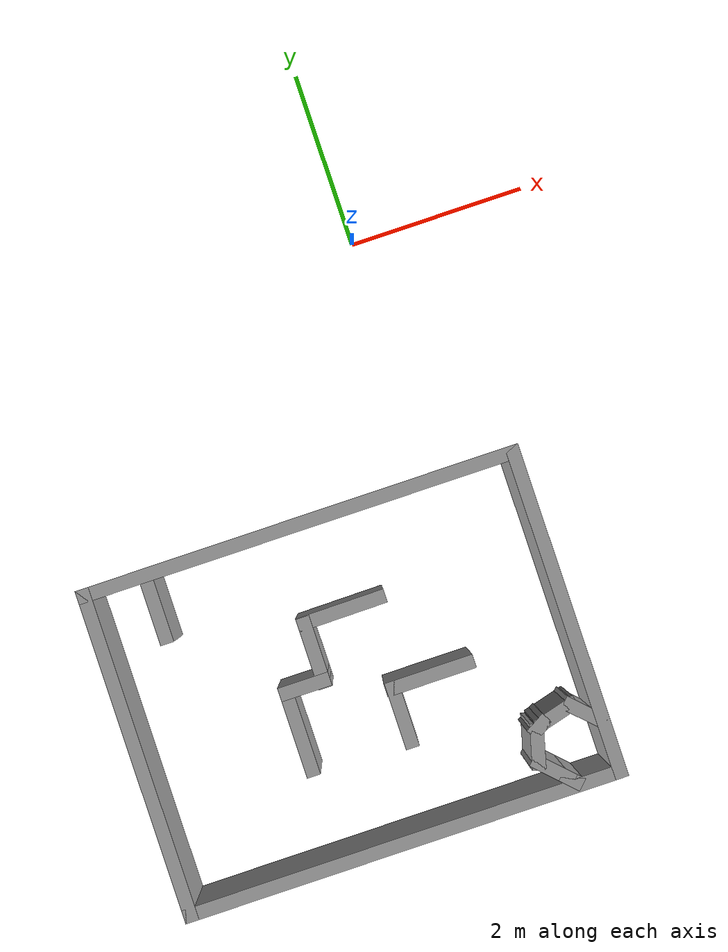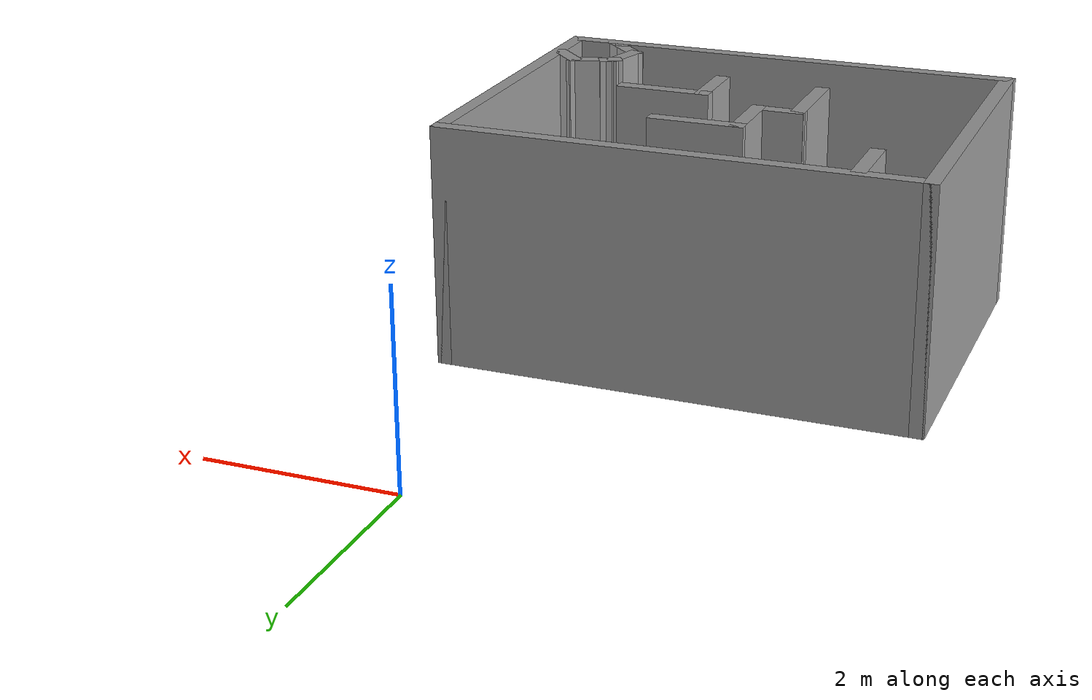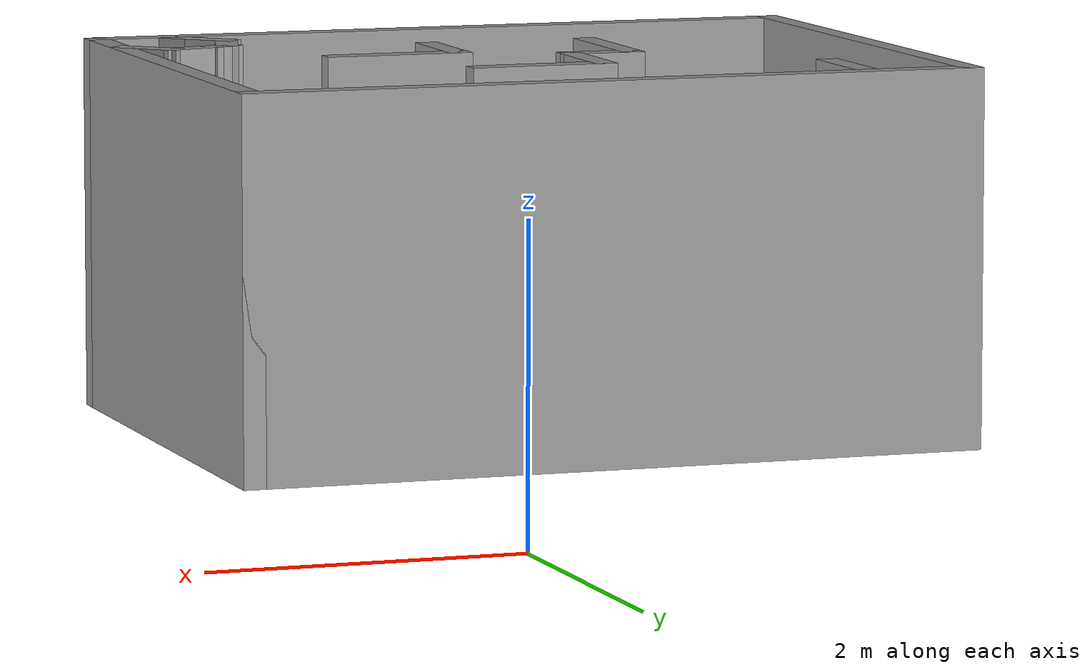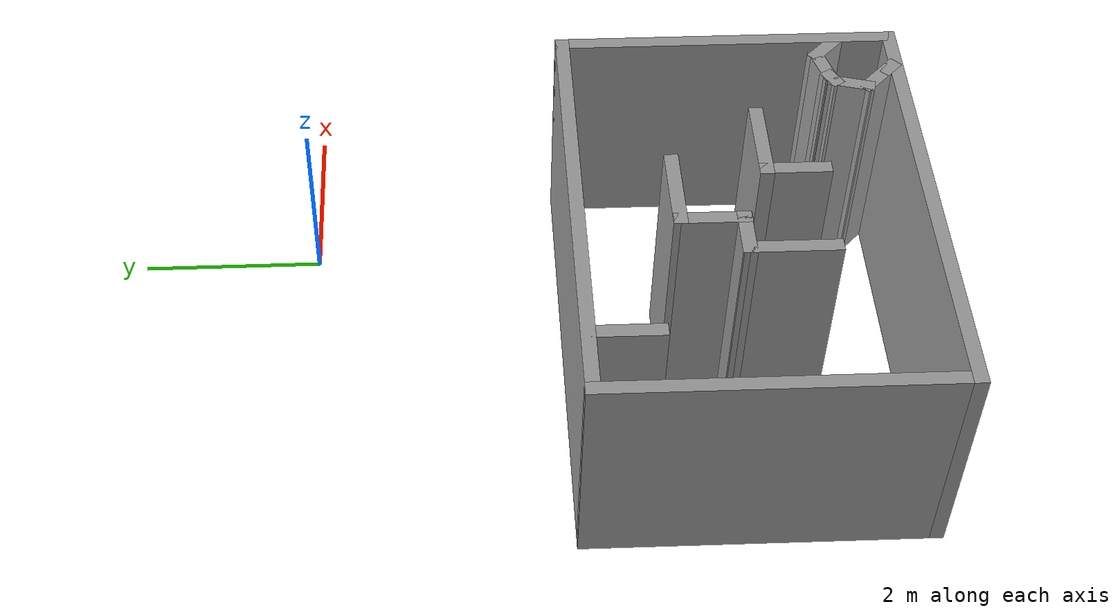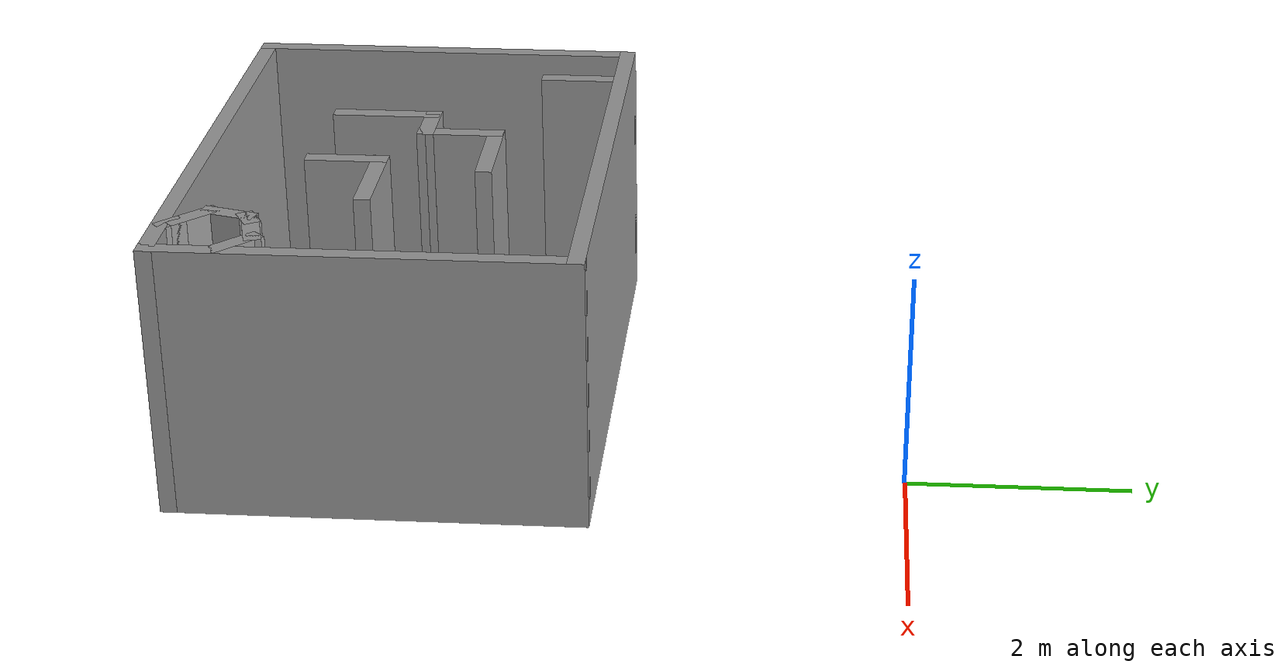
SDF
<?xml version='1.0'?>
<sdf version='1.6'>
  <model name='Contest1'>
    <pose frame=''>-1.545 -4.6 0 0 -0 0</pose>
    <link name='Wall_0'>
      <collision name='Wall_0_Collision'>
        <geometry>
          <box>
            <size>5 0.15 2.5</size>
          </box>
        </geometry>
        <pose frame=''>0 0 1.25 0 -0 0</pose>
      </collision>
      <visual name='Wall_0_Visual'>
        <pose frame=''>0 0 1.25 0 -0 0</pose>
        <geometry>
          <box>
            <size>5 0.15 2.5</size>
          </box>
        </geometry>
        <material>
          <script>
            <uri>file://media/materials/scripts/gazebo.material</uri>
            <name>Gazebo/Grey</name>
          </script>
          <ambient>1 1 1 1</ambient>
        </material>
      </visual>
      <pose frame=''>0 1.8 0 0 -0 0</pose>
    </link>
    <link name='Wall_1'>
      <collision name='Wall_1_Collision'>
        <geometry>
          <box>
            <size>3.75 0.15 2.5</size>
          </box>
        </geometry>
        <pose frame=''>0 0 1.25 0 -0 0</pose>
      </collision>
      <visual name='Wall_1_Visual'>
        <pose frame=''>0 0 1.25 0 -0 0</pose>
        <geometry>
          <box>
            <size>3.75 0.15 2.5</size>
          </box>
        </geometry>
        <material>
          <script>
            <uri>file://media/materials/scripts/gazebo.material</uri>
            <name>Gazebo/Grey</name>
          </script>
          <ambient>1 1 1 1</ambient>
        </material>
      </visual>
      <pose frame=''>2.425 0 0 0 0 -1.5708</pose>
    </link>
    <link name='Wall_10'>
      <collision name='Wall_10_Collision'>
        <geometry>
          <box>
            <size>0.25 0.15 2.5</size>
          </box>
        </geometry>
        <pose frame=''>0 0 1.25 0 -0 0</pose>
      </collision>
      <visual name='Wall_10_Visual'>
        <pose frame=''>0 0 1.25 0 -0 0</pose>
        <geometry>
          <box>
            <size>0.25 0.15 2.5</size>
          </box>
        </geometry>
        <material>
          <script>
            <uri>file://media/materials/scripts/gazebo.material</uri>
            <name>Gazebo/Grey</name>
          </script>
          <ambient>1 1 1 1</ambient>
        </material>
      </visual>
      <pose frame=''>1.76165 -1.07791 0 0 -0 0.523599</pose>
    </link>
    <link name='Wall_11'>
      <collision name='Wall_11_Collision'>
        <geometry>
          <box>
            <size>0.5 0.15 2.5</size>
          </box>
        </geometry>
        <pose frame=''>0 0 1.25 0 -0 0</pose>
      </collision>
      <visual name='Wall_11_Visual'>
        <pose frame=''>0 0 1.25 0 -0 0</pose>
        <geometry>
          <box>
            <size>0.5 0.15 2.5</size>
          </box>
        </geometry>
        <material>
          <script>
            <uri>file://media/materials/scripts/gazebo.material</uri>
            <name>Gazebo/Grey</name>
          </script>
          <ambient>1 1 1 1</ambient>
        </material>
      </visual>
      <pose frame=''>1.97398 -1.00761 0 0 -0 0.261799</pose>
    </link>
    <link name='Wall_12'>
      <collision name='Wall_12_Collision'>
        <geometry>
          <box>
            <size>0.5 0.15 2.5</size>
          </box>
        </geometry>
        <pose frame=''>0 0 1.25 0 -0 0</pose>
      </collision>
      <visual name='Wall_12_Visual'>
        <pose frame=''>0 0 1.25 0 -0 0</pose>
        <geometry>
          <box>
            <size>0.5 0.15 2.5</size>
          </box>
        </geometry>
        <material>
          <script>
            <uri>file://media/materials/scripts/gazebo.material</uri>
            <name>Gazebo/Grey</name>
          </script>
          <ambient>1 1 1 1</ambient>
        </material>
      </visual>
      <pose frame=''>2.26676 -1.08606 0 0 0 -0.785398</pose>
    </link>
    <link name='Wall_14'>
      <collision name='Wall_14_Collision'>
        <geometry>
          <box>
            <size>1 0.15 2.5</size>
          </box>
        </geometry>
        <pose frame=''>0 0 1.25 0 -0 0</pose>
      </collision>
      <visual name='Wall_14_Visual'>
        <pose frame=''>0 0 1.25 0 -0 0</pose>
        <geometry>
          <box>
            <size>1 0.15 2.5</size>
          </box>
        </geometry>
        <material>
          <script>
            <uri>file://media/materials/scripts/gazebo.material</uri>
            <name>Gazebo/Grey</name>
          </script>
          <ambient>1 1 1 1</ambient>
        </material>
      </visual>
      <pose frame=''>0.820031 -0.185404 0 0 -0 3.14159</pose>
    </link>
    <link name='Wall_15'>
      <collision name='Wall_15_Collision'>
        <geometry>
          <box>
            <size>0.75 0.15 2.5</size>
          </box>
        </geometry>
        <pose frame=''>0 0 1.25 0 -0 0</pose>
      </collision>
      <visual name='Wall_15_Visual'>
        <pose frame=''>0 0 1.25 0 -0 0</pose>
        <geometry>
          <box>
            <size>0.75 0.15 2.5</size>
          </box>
        </geometry>
        <material>
          <script>
            <uri>file://media/materials/scripts/gazebo.material</uri>
            <name>Gazebo/Grey</name>
          </script>
          <ambient>1 1 1 1</ambient>
        </material>
      </visual>
      <pose frame=''>0.401643 -0.485404 0 0 0 -1.5708</pose>
    </link>
    <link name='Wall_17'>
      <collision name='Wall_17_Collision'>
        <geometry>
          <box>
            <size>0.993413 0.15 2.5</size>
          </box>
        </geometry>
        <pose frame=''>0 0 1.25 0 -0 0</pose>
      </collision>
      <visual name='Wall_17_Visual'>
        <pose frame=''>0 0 1.25 0 -0 0</pose>
        <geometry>
          <box>
            <size>0.993413 0.15 2.5</size>
          </box>
        </geometry>
        <material>
          <script>
            <uri>file://media/materials/scripts/gazebo.material</uri>
            <name>Gazebo/Grey</name>
          </script>
          <ambient>1 1 1 1</ambient>
        </material>
      </visual>
      <pose frame=''>0.14225 0.776714 0 0 0 -3.13375</pose>
    </link>
    <link name='Wall_18'>
      <collision name='Wall_18_Collision'>
        <geometry>
          <box>
            <size>0.796287 0.15 2.5</size>
          </box>
        </geometry>
        <pose frame=''>0 0 1.25 0 -0 0</pose>
      </collision>
      <visual name='Wall_18_Visual'>
        <pose frame=''>0 0 1.25 0 -0 0</pose>
        <geometry>
          <box>
            <size>0.796287 0.15 2.5</size>
          </box>
        </geometry>
        <material>
          <script>
            <uri>file://media/materials/scripts/gazebo.material</uri>
            <name>Gazebo/Grey</name>
          </script>
          <ambient>1 1 1 1</ambient>
        </material>
      </visual>
      <pose frame=''>-0.279444 0.443652 0 0 0 -1.5708</pose>
    </link>
    <link name='Wall_19'>
      <collision name='Wall_19_Collision'>
        <geometry>
          <box>
            <size>0.569329 0.15 2.5</size>
          </box>
        </geometry>
        <pose frame=''>0 0 1.25 0 -0 0</pose>
      </collision>
      <visual name='Wall_19_Visual'>
        <pose frame=''>0 0 1.25 0 -0 0</pose>
        <geometry>
          <box>
            <size>0.569329 0.15 2.5</size>
          </box>
        </geometry>
        <material>
          <script>
            <uri>file://media/materials/scripts/gazebo.material</uri>
            <name>Gazebo/Grey</name>
          </script>
          <ambient>1 1 1 1</ambient>
        </material>
      </visual>
      <pose frame=''>-0.489108 0.127454 0 0 -0 3.14</pose>
    </link>
    <link name='Wall_2'>
      <collision name='Wall_2_Collision'>
        <geometry>
          <box>
            <size>5 0.15 2.5</size>
          </box>
        </geometry>
        <pose frame=''>0 0 1.25 0 -0 0</pose>
      </collision>
      <visual name='Wall_2_Visual'>
        <pose frame=''>0 0 1.25 0 -0 0</pose>
        <geometry>
          <box>
            <size>5 0.15 2.5</size>
          </box>
        </geometry>
        <material>
          <script>
            <uri>file://media/materials/scripts/gazebo.material</uri>
            <name>Gazebo/Grey</name>
          </script>
          <ambient>1 1 1 1</ambient>
        </material>
      </visual>
      <pose frame=''>0 -1.8 0 0 -0 3.14159</pose>
    </link>
    <link name='Wall_20'>
      <collision name='Wall_20_Collision'>
        <geometry>
          <box>
            <size>1 0.15 2.5</size>
          </box>
        </geometry>
        <pose frame=''>0 0 1.25 0 -0 0</pose>
      </collision>
      <visual name='Wall_20_Visual'>
        <pose frame=''>0 0 1.25 0 -0 0</pose>
        <geometry>
          <box>
            <size>1 0.15 2.5</size>
          </box>
        </geometry>
        <material>
          <script>
            <uri>file://media/materials/scripts/gazebo.material</uri>
            <name>Gazebo/Grey</name>
          </script>
          <ambient>1 1 1 1</ambient>
        </material>
      </visual>
      <pose frame=''>-0.698773 -0.310437 0 0 0 -1.5708</pose>
    </link>
    <link name='Wall_3'>
      <collision name='Wall_3_Collision'>
        <geometry>
          <box>
            <size>3.75 0.15 2.5</size>
          </box>
        </geometry>
        <pose frame=''>0 0 1.25 0 -0 0</pose>
      </collision>
      <visual name='Wall_3_Visual'>
        <pose frame=''>0 0 1.25 0 -0 0</pose>
        <geometry>
          <box>
            <size>3.75 0.15 2.5</size>
          </box>
        </geometry>
        <material>
          <script>
            <uri>file://media/materials/scripts/gazebo.material</uri>
            <name>Gazebo/Grey</name>
          </script>
          <ambient>1 1 1 1</ambient>
        </material>
      </visual>
      <pose frame=''>-2.425 0 0 0 -0 1.5708</pose>
    </link>
    <link name='Wall_5'>
      <collision name='Wall_5_Collision'>
        <geometry>
          <box>
            <size>0.75 0.15 2.5</size>
          </box>
        </geometry>
        <pose frame=''>0 0 1.25 0 -0 0</pose>
      </collision>
      <visual name='Wall_5_Visual'>
        <pose frame=''>0 0 1.25 0 -0 0</pose>
        <geometry>
          <box>
            <size>0.75 0.15 2.5</size>
          </box>
        </geometry>
        <material>
          <script>
            <uri>file://media/materials/scripts/gazebo.material</uri>
            <name>Gazebo/Grey</name>
          </script>
          <ambient>1 1 1 1</ambient>
        </material>
      </visual>
      <pose frame=''>-1.73721 1.40577 0 0 0 -1.5708</pose>
    </link>
    <link name='Wall_7'>
      <collision name='Wall_7_Collision'>
        <geometry>
          <box>
            <size>0.25 0.15 2.5</size>
          </box>
        </geometry>
        <pose frame=''>0 0 1.25 0 -0 0</pose>
      </collision>
      <visual name='Wall_7_Visual'>
        <pose frame=''>0 0 1.25 0 -0 0</pose>
        <geometry>
          <box>
            <size>0.25 0.15 2.5</size>
          </box>
        </geometry>
        <material>
          <script>
            <uri>file://media/materials/scripts/gazebo.material</uri>
            <name>Gazebo/Grey</name>
          </script>
          <ambient>1 1 1 1</ambient>
        </material>
      </visual>
      <pose frame=''>1.9106 -1.72382 0 0 -0 2.35619</pose>
    </link>
    <link name='Wall_8'>
      <collision name='Wall_8_Collision'>
        <geometry>
          <box>
            <size>0.5 0.15 2.5</size>
          </box>
        </geometry>
        <pose frame=''>0 0 1.25 0 -0 0</pose>
      </collision>
      <visual name='Wall_8_Visual'>
        <pose frame=''>0 0 1.25 0 -0 0</pose>
        <geometry>
          <box>
            <size>0.5 0.15 2.5</size>
          </box>
        </geometry>
        <material>
          <script>
            <uri>file://media/materials/scripts/gazebo.material</uri>
            <name>Gazebo/Grey</name>
          </script>
          <ambient>1 1 1 1</ambient>
        </material>
      </visual>
      <pose frame=''>1.7515 -1.56472 0 0 -0 2.35619</pose>
    </link>
    <link name='Wall_9'>
      <collision name='Wall_9_Collision'>
        <geometry>
          <box>
            <size>0.5 0.15 2.5</size>
          </box>
        </geometry>
        <pose frame=''>0 0 1.25 0 -0 0</pose>
      </collision>
      <visual name='Wall_9_Visual'>
        <pose frame=''>0 0 1.25 0 -0 0</pose>
        <geometry>
          <box>
            <size>0.5 0.15 2.5</size>
          </box>
        </geometry>
        <material>
          <script>
            <uri>file://media/materials/scripts/gazebo.material</uri>
            <name>Gazebo/Grey</name>
          </script>
          <ambient>1 1 1 1</ambient>
        </material>
      </visual>
      <pose frame=''>1.67305 -1.27194 0 0 -0 1.309</pose>
    </link>
    <static>1</static>
  </model>
</sdf>
